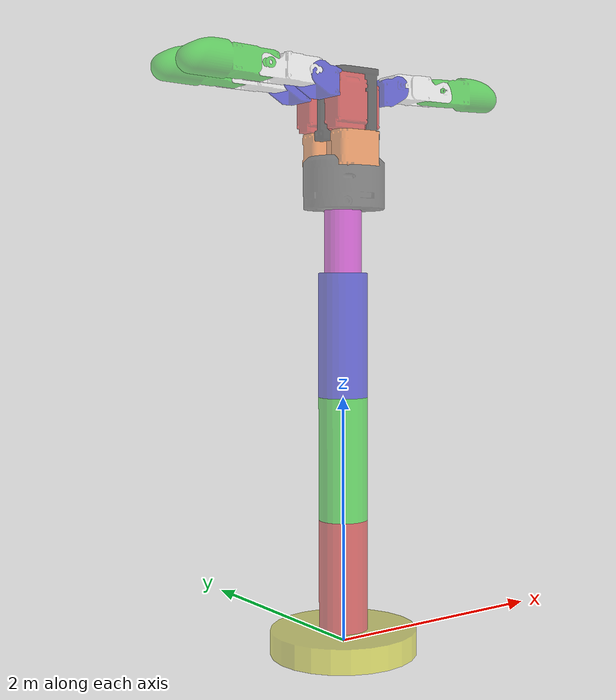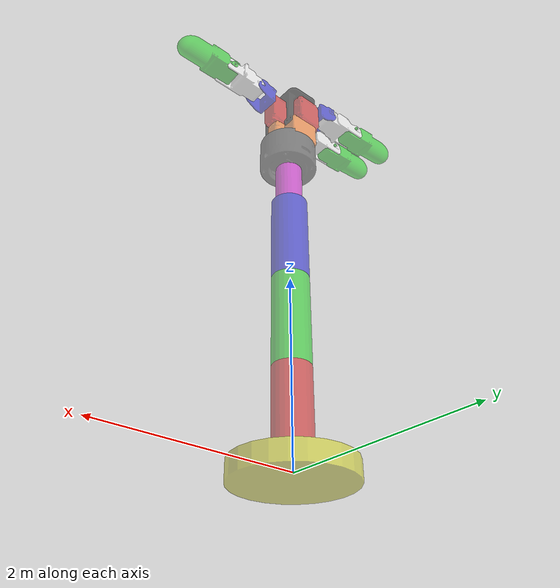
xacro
<?xml version="1.0"?>
<robot name="combine" xmlns:xacro="http://www.ros.org/wiki/xacro">
  <xacro:include filename="$(find tesollo)/urdf/arm.xacro" />

  <joint name="joint_name" type="revolute">
    <origin xyz="0.0 0.0 1.2" rpy="0.0 0.0 0.0"/>
    <parent link="stick4"/>
    <child link="base_link"/>
    <axis xyz="0.0 0.0 1.0"/>
    <limit lower="-3.14" upper="3.14" effort="1000" velocity="5.0"/>
  </joint>
  <xacro:include filename="$(find tesollo)/urdf/robot_hand.urdf.xacro" />
</robot>

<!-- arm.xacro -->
<robot name="arm" xmlns:xacro="http://www.ros.org/wiki/xacro">

  <link name="world"/>

  <joint name="world_base_footprint_joint" type="fixed">
    <origin xyz="0 0 0" rpy="0 0 0" />
    <parent link="world"/>
    <child link="base_footprint"/>
  </joint>

  <link name="base_footprint" />
  <joint name="base_footprint_link_joint" type="fixed">
    <origin xyz="0 0 0" rpy="0 0 0" />
    <parent link="base_footprint"/>
    <child link="main_base"/>
  </joint>
  <link name="main_base">
    <visual>
      <origin xyz="0 0 0"/>
      <geometry>
        <cylinder length="0.2" radius="0.6"/>
      </geometry>
      <material name="yellow"/>
    </visual>
  </link>
  <joint name="base_stick1_joint" type="revolute">
    <origin xyz="0.0 0.0 0.0" rpy="0.0 0.0 0.0"/>
    <parent link="main_base"/>
    <child link="stick1"/>
    <limit lower="-3.14" upper="3.14" effort="1000" velocity="5.0"/>
    <axis xyz="0 0 1"/>
  </joint>
  <link name="stick1">
    <visual>
      <origin xyz="0 0 0.5"/>
      <geometry>
        <cylinder length="1" radius="0.2"/>
      </geometry>
      <material name="red"/>
    </visual>
  </link>
  <joint name="stick1_stick2_joint" type="revolute">
    <origin xyz="0.0 0.0 1" rpy="0.0 0.0 0.0"/>
    <parent link="stick1"/>
    <child link="stick2"/>
    <limit lower="-1.57" upper="1.57" effort="1000" velocity="5.0"/>
    <axis xyz="1 0 0"/>
  </joint>
  <link name="stick2">
    <visual>
      <origin xyz="0 0 0.5"/>
      <geometry>
        <cylinder length="1" radius="0.2"/>
      </geometry>
      <material name="green"/>
    </visual>
  </link>
  <joint name="stick2_stick3_joint" type="revolute">
    <origin xyz="0.0 0.0 1" rpy="0.0 0.0 0.0"/>
    <parent link="stick2"/>
    <child link="stick3"/>
    <limit lower="-1.57" upper="1.57" effort="1000" velocity="5.0"/>
    <axis xyz="1 0 0"/>
  </joint>
  <link name="stick3">
    <visual>
      <origin xyz="0 0 0.5"/>
      <geometry>
        <cylinder length="1" radius="0.2"/>
      </geometry>
      <material name="blue"/>
    </visual>
  </link>
  <joint name="stick3_stick4_joint" type="prismatic">
    <origin xyz="0.0 0.0 0.5" rpy="0.0 0.0 0.0"/>
    <parent link="stick3"/>
    <child link="stick4"/>
    <limit lower="-0.5" upper="0.5" effort="1000" velocity="5.0"/>
    <axis xyz="0 0 1"/>
  </joint>
  <link name="stick4">
    <visual>
      <origin xyz="0 0 0.5"/>
      <geometry>
        <cylinder length="1" radius="0.15"/>
      </geometry>
      <material name="puple"/>
    </visual>
  </link>
</robot>

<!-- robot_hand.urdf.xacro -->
<robot name="robot_hand" xmlns:xacro="http://www.ros.org/wiki/xacro">
  <!-- Import Rviz colors -->
  <xacro:include filename="$(find tesollo)/urdf/materials.xacro" />

  <xacro:property name="robot_base_radius" value="0.64"  />
  <xacro:property name="robot_base_length" value="0.405" />

  <xacro:property name="finger_link0_width" value="0.196"/>
  <xacro:property name="finger_link0_length" value="0.358" />
  <xacro:property name="finger_link0_height" value="0.284" />

  <xacro:property name="finger_link1_width" value="0.196" />
  <xacro:property name="finger_link1_length" value="0.284" />
  <xacro:property name="finger_link1_height" value="0.358" />

  <xacro:property name="finger_link3_width" value="0.196" />
  <xacro:property name="finger_link3_length" value="0.284" />
  <xacro:property name="finger_link3_height" value="0.358" />

  <xacro:property name="PI" value="3.14"/>

  <!-- Robot hand base-->
  <link name="base_link">
    <visual>
      <origin xyz="0 0 0" rpy="0 0 ${-1*PI/2}"/>
      <geometry>
        <mesh filename="../meshes/base.stl" scale="0.01 0.01 0.01"/>
      </geometry>
      <material name="grey"/>
    </visual>
  </link>

  <!-- finger_1 -->
  <joint name="finger_1_joint0" type="fixed">
    <origin xyz="${finger_link0_width/2} 0 ${finger_link0_height/2}" rpy="0 0 0" />
    <parent link="base_link"/>
    <child link="finger_1_link0"/>
    <axis xyz="0 0 1"/>
  </joint>

  <!-- motor 1 -->
  <link name="finger_1_link0">
    <visual>
      <origin xyz="0 0 ${finger_link0_height/2}" rpy="0 0 ${1*PI/2}"/>
      <geometry>
        <mesh filename="../meshes/finger0.stl" scale="0.01 0.01 0.01"/>
      </geometry>
      <material name="orange"/>
    </visual>
  </link>

  <joint name="finger_1_joint1" type="revolute">
    <origin xyz="0.07 0 ${finger_link1_length}" rpy="0 0 0" />
    <parent link="finger_1_link0"/>
    <child link="finger_1_link1"/>
    <axis xyz="0 0 1"/>
    <limit effort="1000" lower="-0.785" upper="0.785" velocity="5.027"/>
  </joint>

  <!-- motor 2 -->
  <link name="finger_1_link1">
    <visual>
      <origin xyz="0 0 ${finger_link1_height/2 + 0.04}" rpy="0 0 ${1*PI/2}"/>
      <geometry>
        <mesh filename="../meshes/finger1.stl" scale="0.01 0.01 0.01"/>
      </geometry>
      <material name="red"/>
    </visual>
  </link>

  <joint name="finger_1_joint2" type="revolute">
    <origin xyz="${finger_link1_width/2+0.025} +0.005 ${finger_link1_height-0.065}" rpy="0 ${1*PI/2} 0" />    <!-- add offset -->
    <parent link="finger_1_link1"/>
    <child link="finger_1_link2"/>
    <axis xyz="0 0 1"/>
    <limit effort="1000" lower="-1.57" upper="1.57" velocity="5.027"/>
  </joint>

  <!-- link -->
  <link name="finger_1_link2">
    <visual>
      <origin xyz="-0.05 -0.01 0.1" rpy="0 0 ${1*PI/2}"/> <!-- add offset -->
      <geometry>
        <mesh filename="../meshes/link.stl" scale="0.01 0.01 0.01"/>
      </geometry>
      <material name="blue"/>
    </visual>
  </link>

  <!-- motor 3 -->
  <joint name="finger_1_joint3" type="revolute">
    <origin xyz="-0.1 0 0.2" rpy="${1*PI/2} 0 0" />
    <parent link="finger_1_link2"/>
    <child link="finger_1_link3"/>
    <limit effort="1000" lower="0" upper="1.57" velocity="5.027"/>
    <axis xyz="0 0 1"/>
  </joint>

  <link name="finger_1_link3">
    <visual>
      <origin xyz="0 ${finger_link3_length/2} 0" rpy="${-1*PI/2} ${1*PI/2} 0"/>
      <geometry>
        <mesh filename="../meshes/finger2.stl" scale="0.01 0.01 0.01"/>
      </geometry>
      <material name="white"/>
    </visual>
  </link>

  <!-- motor 4 -->
  <joint name="finger_1_joint4" type="revolute">
    <origin xyz="0 ${finger_link3_height + 0.087} 0" rpy="0 0 0" />
    <parent link="finger_1_link3"/>
    <child link="finger_1_link4"/>
    <limit effort="1000" lower="0" upper="1.57" velocity="5.027"/>
    <axis xyz="0 0 1"/>
  </joint>

  <link name="finger_1_link4">
    <visual>
      <origin xyz="-0.01 0.22 -0.01" rpy="${-1*PI/2} ${1*PI/2} 0"/>
      <geometry>
        <mesh filename="../meshes/finger3.stl" scale="0.01 0.01 0.01"/>
      </geometry>
      <material name="green"/>
    </visual>
  </link>

  <!-- finger_2 -->
  <joint name="finger_2_joint0" type="fixed">
    <origin xyz="-0.05 ${-1*finger_link0_width} ${finger_link0_height/2}" rpy="0 0 ${PI}" />
    <parent link="base_link"/>
    <child link="finger_2_link0"/>
    <axis xyz="0 0 1"/>
  </joint>

  <link name="finger_2_link0">
    <visual>
      <origin xyz="0 0 ${finger_link0_height/2}" rpy="0 0 ${1*PI/2}"/>
      <geometry>
        <mesh filename="../meshes/finger0.stl" scale="0.01 0.01 0.01"/>
      </geometry>
      <material name="orange"/>
    </visual>
  </link>

  <joint name="finger_2_joint1" type="revolute">
    <origin xyz="0.07 0 ${finger_link1_length}" rpy="0 0 0" />
    <parent link="finger_2_link0"/>
    <child link="finger_2_link1"/>
    <axis xyz="0 0 1"/>
    <limit effort="1000" lower="0" upper="0.785" velocity="5.027"/>
  </joint>

  <!-- motor 2 -->
  <link name="finger_2_link1">
    <visual>
      <origin xyz="0 0 ${finger_link1_height/2 + 0.04}" rpy="0 0 ${1*PI/2}"/>
      <geometry>
        <mesh filename="../meshes/finger1.stl" scale="0.01 0.01 0.01"/>
      </geometry>
      <material name="red"/>
    </visual>
  </link>

  <joint name="finger_2_joint2" type="revolute">
    <origin xyz="${finger_link1_width/2+0.025} +0.005 ${finger_link1_height-0.065}" rpy="0 ${1*PI/2} 0" />    <!-- add offset -->
    <parent link="finger_2_link1"/>
    <child link="finger_2_link2"/>
    <axis xyz="0 0 1"/>
    <limit effort="1000" lower="-1.57" upper="1.57" velocity="5.027"/>
  </joint>

  <!-- link -->
  <link name="finger_2_link2">
    <visual>
      <origin xyz="-0.05 -0.01 0.1" rpy="0 0 ${1*PI/2}"/> <!-- add offset -->
      <geometry>
        <mesh filename="../meshes/link.stl" scale="0.01 0.01 0.01"/>
      </geometry>
      <material name="blue"/>
    </visual>
  </link>

  <!-- motor 3 -->
  <joint name="finger_2_joint3" type="revolute">
    <origin xyz="-0.1 0 0.2" rpy="${1*PI/2} 0 0" />
    <parent link="finger_2_link2"/>
    <child link="finger_2_link3"/>
    <limit effort="1000" lower="0" upper="1.57" velocity="5.027"/>
    <axis xyz="0 0 1"/>
  </joint>

  <link name="finger_2_link3">
    <visual>
      <origin xyz="0 ${finger_link3_length/2} 0" rpy="${-1*PI/2} ${1*PI/2} 0"/>
      <geometry>
        <mesh filename="../meshes/finger2.stl" scale="0.01 0.01 0.01"/>
      </geometry>
      <material name="white"/>
    </visual>
  </link>

  <!-- motor 4 -->
  <joint name="finger_2_joint4" type="revolute">
    <origin xyz="0 ${finger_link3_height + 0.087} 0" rpy="0 0 0" />
    <parent link="finger_2_link3"/>
    <child link="finger_2_link4"/>
    <limit effort="1000" lower="0" upper="1.57" velocity="5.027"/>
    <axis xyz="0 0 1"/>
  </joint>

  <link name="finger_2_link4">
    <visual>
      <origin xyz="-0.01 0.22 -0.01" rpy="${-1*PI/2} ${1*PI/2} 0"/>
      <geometry>
        <mesh filename="../meshes/finger3.stl" scale="0.01 0.01 0.01"/>
      </geometry>
      <material name="green"/>
    </visual>
  </link>

  <!-- finger_3 -->
  <joint name="finger_3_joint0" type="fixed">
    <origin xyz="-0.05 ${1*finger_link0_width} ${finger_link0_height/2}" rpy="0 0 ${PI}" />
    <parent link="base_link"/>
    <child link="finger_3_link0"/>
    <axis xyz="0 0 1"/>
  </joint>

  <link name="finger_3_link0">
    <visual>
      <origin xyz="0 0 ${finger_link0_height/2}" rpy="0 0 ${1*PI/2}"/>
      <geometry>
        <mesh filename="../meshes/finger0.stl" scale="0.01 0.01 0.01"/>
      </geometry>
      <material name="orange"/>
    </visual>
  </link>

  <joint name="finger_3_joint1" type="revolute">
    <origin xyz="0.07 0 ${finger_link1_length}" rpy="0 0 0" />
    <parent link="finger_3_link0"/>
    <child link="finger_3_link1"/>
    <axis xyz="0 0 1"/>
    <limit effort="1000" lower="-0.785" upper="0" velocity="5.027"/>
  </joint>

  <!-- motor 2 -->
  <link name="finger_3_link1">
    <visual>
      <origin xyz="0 0 ${finger_link1_height/2 + 0.04}" rpy="0 0 ${1*PI/2}"/>
      <geometry>
        <mesh filename="../meshes/finger1.stl" scale="0.01 0.01 0.01"/>
      </geometry>
      <material name="red"/>
    </visual>
  </link>

  <joint name="finger_3_joint2" type="revolute">
    <origin xyz="${finger_link1_width/2+0.025} +0.005 ${finger_link1_height-0.065}" rpy="0 ${1*PI/2} 0" />    <!-- add offset -->
    <parent link="finger_3_link1"/>
    <child link="finger_3_link2"/>
    <axis xyz="0 0 1"/>
    <limit effort="1000" lower="-1.57" upper="1.57" velocity="5.027"/>
  </joint>

  <!-- link -->
  <link name="finger_3_link2">
    <visual>
      <origin xyz="-0.05 -0.01 0.1" rpy="0 0 ${1*PI/2}"/> <!-- add offset -->
      <geometry>
        <mesh filename="../meshes/link.stl" scale="0.01 0.01 0.01"/>
      </geometry>
      <material name="blue"/>
    </visual>
  </link>

  <!-- motor 3 -->
  <joint name="finger_3_joint3" type="revolute">
    <origin xyz="-0.1 0 0.2" rpy="${1*PI/2} 0 0" />
    <parent link="finger_3_link2"/>
    <child link="finger_3_link3"/>
    <limit effort="1000" lower="0" upper="1.57" velocity="5.027"/>
    <axis xyz="0 0 1"/>
  </joint>

  <link name="finger_3_link3">
    <visual>
      <origin xyz="0 ${finger_link3_length/2} 0" rpy="${-1*PI/2} ${1*PI/2} 0"/>
      <geometry>
        <mesh filename="../meshes/finger2.stl" scale="0.01 0.01 0.01"/>
      </geometry>
      <material name="white"/>
    </visual>
  </link>

  <!-- motor 4 -->
  <joint name="finger_3_joint4" type="revolute">
    <origin xyz="0 ${finger_link3_height + 0.087} 0" rpy="0 0 0" />
    <parent link="finger_3_link3"/>
    <child link="finger_3_link4"/>
    <limit effort="1000" lower="0" upper="1.57" velocity="5.027"/>
    <axis xyz="0 0 1"/>
  </joint>

  <link name="finger_3_link4">
    <visual>
      <origin xyz="-0.01 0.22 -0.01" rpy="${-1*PI/2} ${1*PI/2} 0"/>
      <geometry>
        <mesh filename="../meshes/finger3.stl" scale="0.01 0.01 0.01"/>
      </geometry>
      <material name="green"/>
    </visual>
  </link>

  <!-- hand palm -->
  <joint name="palm_joint" type="fixed">
    <origin xyz="0 0 0.7" rpy="0 0 0" />
    <parent link="base_link"/>
    <child link="palm_link"/>
    <axis xyz="0 0 1"/>
  </joint>

  <link name="palm_link">
    <visual>
      <origin xyz="0 0 0" rpy="0 0 ${-1 * PI/2}"/>
      <geometry>
        <mesh filename="../meshes/housing.stl" scale="0.01 0.01 0.01"/>
      </geometry>
      <material name="black"/>
    </visual>
  </link>

</robot>

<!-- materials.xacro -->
<robot>

  <material name="black">
    <color rgba="0.0 0.0 0.0 0.5"/>
  </material>

  <material name="blue">
    <color rgba="0.0 0.0 0.8 0.5"/>
  </material>

  <material name="green">
    <color rgba="0.0 0.8 0.0 0.5"/>
  </material>

  <material name="grey">
    <color rgba="0.2 0.2 0.2 0.5"/>
  </material>

  <material name="orange">
    <color rgba="${255/255} ${108/255} ${10/255} 0.5"/>
  </material>

  <material name="brown">
    <color rgba="${222/255} ${207/255} ${195/255} 0.5"/>
  </material>

  <material name="red">
    <color rgba="0.8 0.0 0.0 0.5"/>
  </material>

  <material name="white">
    <color rgba="1.0 1.0 1.0 0.5"/>
  </material>

  <material name="puple">
    <color rgba="0.8 0.0 0.8 0.5"/>
  </material>

  <material name="yellow">
    <color rgba="0.8 0.8 0.0 0.5"/>
  </material>
</robot>
